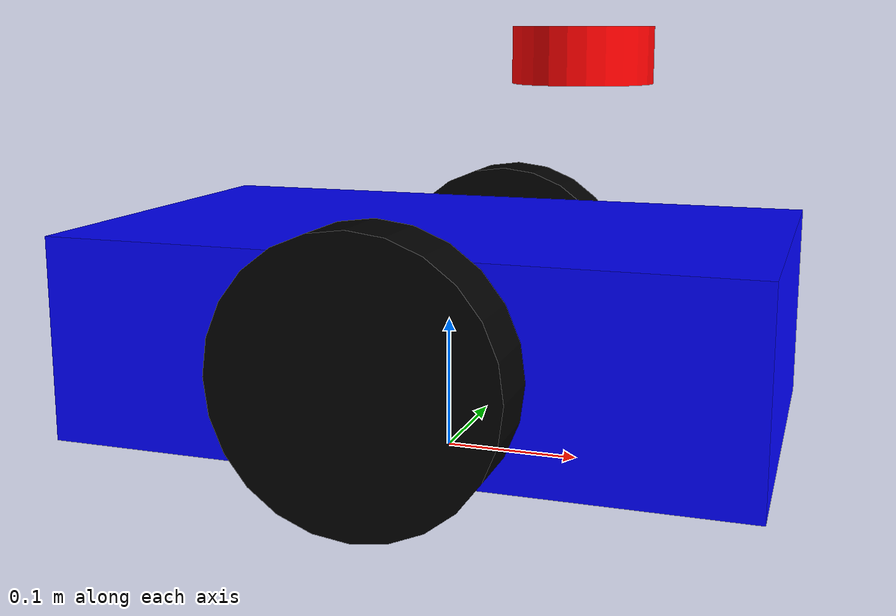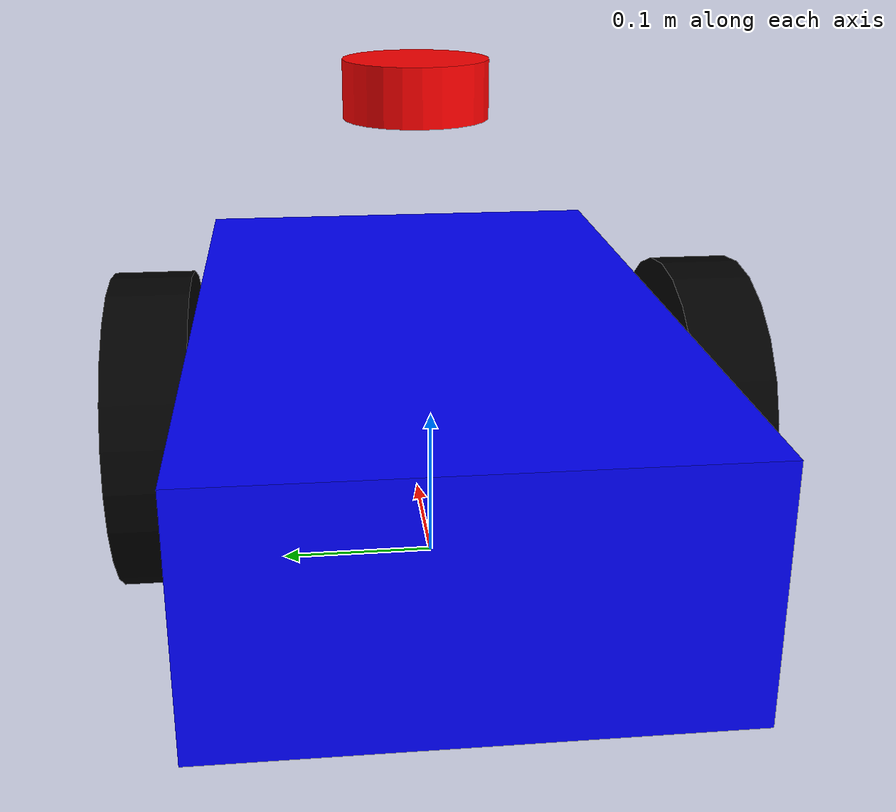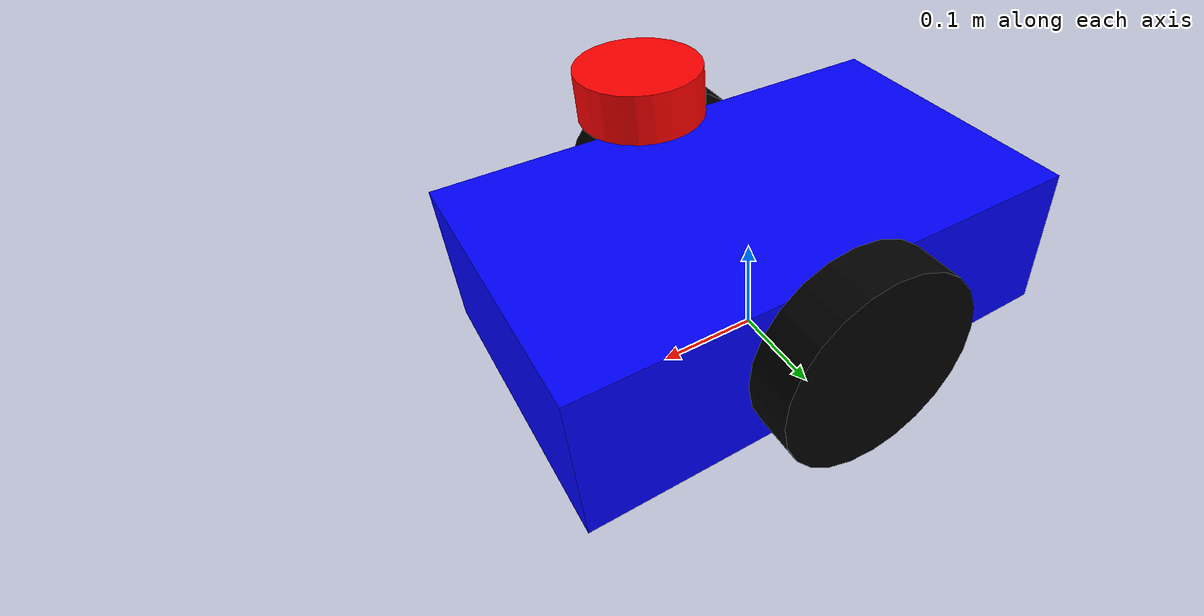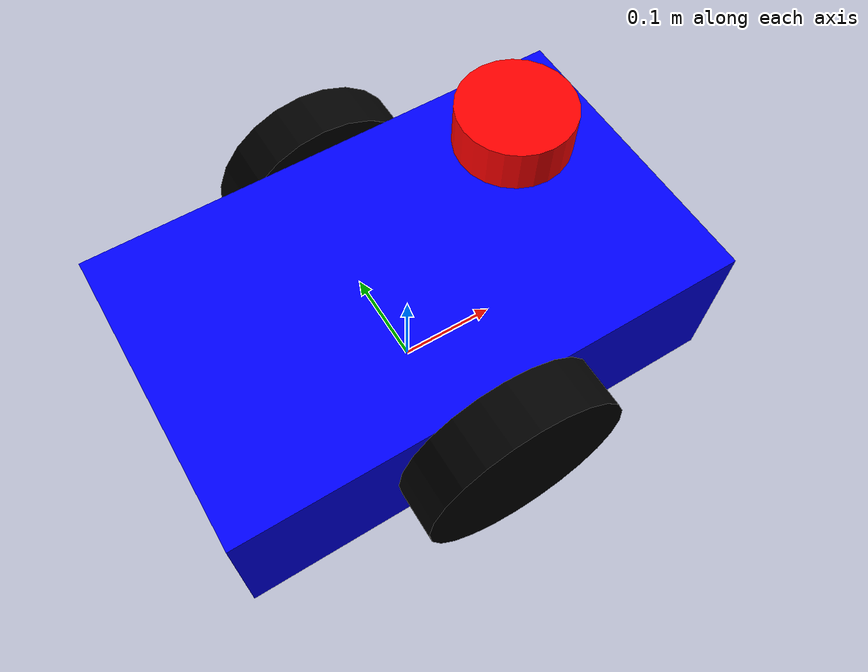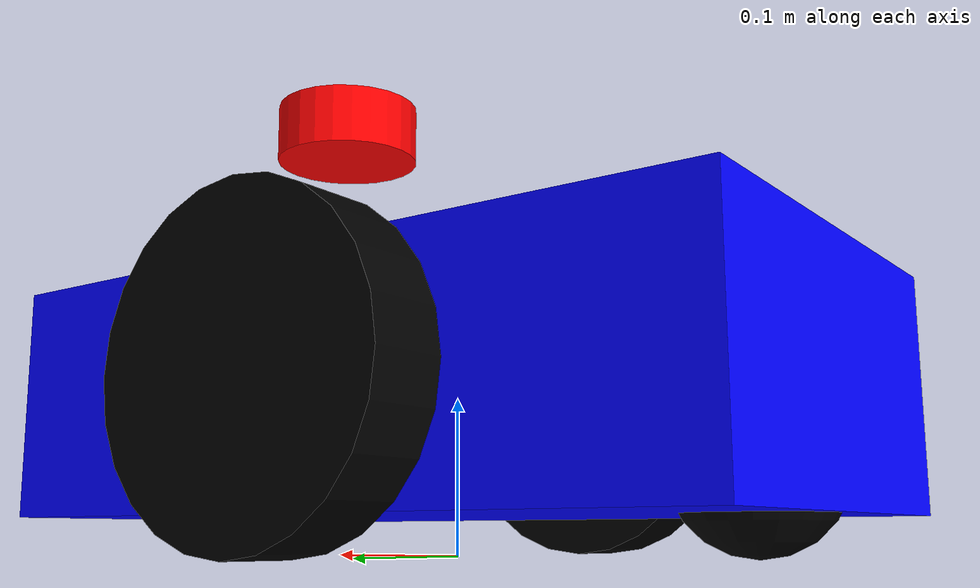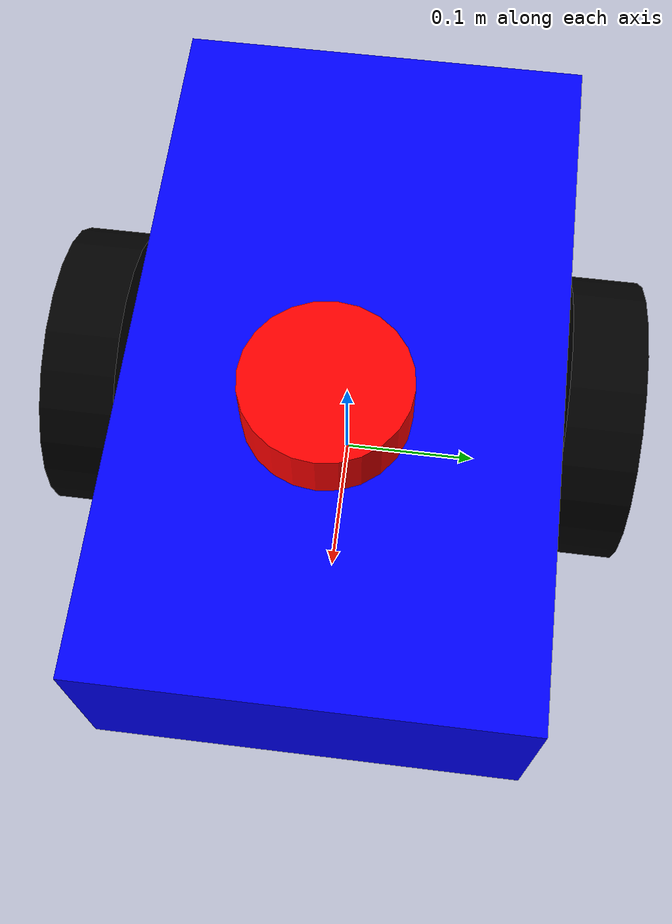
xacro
<?xml version="1.0"?>
<robot xmlns:xacro="http://www.ros.org/wiki/xacro" name="differential_drive_robot">

  <!-- ================= BASE LINK ================= -->
  <link name="base_link"/>

  <!-- ================= CHASSIS ================= -->
  <joint name="chassis_joint" type="fixed">
    <parent link="base_link"/>
    <child link="chassis"/>
    <origin xyz="0 0 0.1" rpy="0 0 0"/>
  </joint>

  <link name="chassis">
    <visual>
      <origin xyz="0 0 0" rpy="0 0 0"/>
      <geometry>
        <box size="0.5 0.3 0.15"/>
      </geometry>
      <material name="blue">
        <color rgba="0 0 1 1"/>
      </material>
    </visual>
    <collision>
      <origin xyz="0 0 0" rpy="0 0 0"/>
      <geometry>
        <box size="0.5 0.3 0.15"/>
      </geometry>
    </collision>
    <inertial>
      <mass value="5.0"/>
      <origin xyz="0 0 0" rpy="0 0 0"/>
      <inertia ixx="0.0468" ixy="0" ixz="0" iyy="0.1115" iyz="0" izz="0.1416"/>
    </inertial>
  </link>

  <!-- ================= LEFT WHEEL ================= -->
  <joint name="left_wheel_joint" type="continuous">
    <parent link="chassis"/>
    <child link="left_wheel"/>
    <origin xyz="0 0.175 0" rpy="-1.5708 0 0"/>
    <axis xyz="0 0 1"/>
  </joint>

  <link name="left_wheel">
    <visual>
      <geometry>
        <cylinder radius="0.1" length="0.05"/>
      </geometry>
      <material name="black">
        <color rgba="0 0 0 1"/>
      </material>
    </visual>
    <collision>
      <geometry>
        <cylinder radius="0.1" length="0.05"/>
      </geometry>
    </collision>
    <inertial>
      <mass value="0.5"/>
      <origin xyz="0 0 0" rpy="0 0 0"/>
      <inertia ixx="0.00135" ixy="0" ixz="0" iyy="0.00135" iyz="0" izz="0.0025"/>
    </inertial>
  </link>

  <!-- ================= RIGHT WHEEL ================= -->
  <joint name="right_wheel_joint" type="continuous">
    <parent link="chassis"/>
    <child link="right_wheel"/>
    <origin xyz="0 -0.175 0" rpy="-1.5708 0 0"/>
    <axis xyz="0 0 1"/>
  </joint>

  <link name="right_wheel">
    <visual>
      <geometry>
        <cylinder radius="0.1" length="0.05"/>
      </geometry>
      <material name="black">
        <color rgba="0 0 0 1"/>
      </material>
    </visual>
    <collision>
      <geometry>
        <cylinder radius="0.1" length="0.05"/>
      </geometry>
    </collision>
    <inertial>
      <mass value="0.5"/>
      <origin xyz="0 0 0" rpy="0 0 0"/>
      <inertia ixx="0.00135" ixy="0" ixz="0" iyy="0.00135" iyz="0" izz="0.0025"/>
    </inertial>
  </link>

  <!-- ================= CASTER WHEEL (BALANCES THE ROBOT) ================= -->
  <joint name="caster_wheel_joint" type="fixed">
    <parent link="chassis"/>
    <child link="caster_wheel"/>
    <!-- Aligned to floor level (z = -0.05) at the rear (-x) -->
    <origin xyz="-0.20 0 -0.05" rpy="0 0 0"/>
  </joint>

  <link name="caster_wheel">
    <visual>
      <geometry>
        <sphere radius="0.05"/>
      </geometry>
      <material name="black">
        <color rgba="0 0 0 1"/>
      </material>
    </visual>
    <collision>
      <geometry>
        <sphere radius="0.05"/>
      </geometry>
    </collision>
    <inertial>
      <mass value="0.1"/>
      <origin xyz="0 0 0" rpy="0 0 0"/>
      <inertia ixx="0.0001" ixy="0" ixz="0" iyy="0.0001" iyz="0" izz="0.0001"/>
    </inertial>
  </link>

  <gazebo reference="caster_wheel">
    <mu1>0.001</mu1>
    <mu2>0.001</mu2>
  </gazebo>

  <!-- ================= LIDAR JOINT & LINK ================= -->
  <joint name="lidar_joint" type="fixed">
    <!-- Elevated to z=0.20 to clear chassis height -->
    <origin xyz="0.10 0.00 0.20" rpy="0 0 0"/>
    <parent link="chassis"/>
    <child link="lidar_link"/>
  </joint>

  <link name="lidar_link">
    <visual>
      <origin xyz="0 0 0" rpy="0 0 0"/>
      <geometry>
        <cylinder radius="0.05" length="0.04"/>
      </geometry>
      <material name="red">
        <color rgba="1 0 0 1"/>
      </material>
    </visual>
    <collision>
      <origin xyz="0 0 0" rpy="0 0 0"/>
      <geometry>
        <cylinder radius="0.05" length="0.04"/>
      </geometry>
    </collision>
    <inertial>
      <mass value="0.1"/>
      <origin xyz="0 0 0" rpy="0 0 0"/>
      <inertia ixx="0.000075" ixy="0" ixz="0" iyy="0.000075" iyz="0" izz="0.000125"/>
    </inertial>
  </link>

  <!-- Prevent Gazebo from lumping lidar_link into chassis -->
  <gazebo reference="lidar_joint">
    <preserveFixedJoint>true</preserveFixedJoint>
  </gazebo>

  <!-- ================= GAZEBO PLUGINS & SENSORS ================= -->

  <!-- Sensors System Plugin -->
  <gazebo>
    <plugin filename="gz-sim-sensors-system" name="gz::sim::systems::Sensors">
      <render_engine>ogre2</render_engine>
    </plugin>
  </gazebo>

  <!-- Gazebo Sim Differential Drive Plugin -->
  <gazebo>
    <plugin filename="gz-sim-diff-drive-system" name="gz::sim::systems::DiffDrive">
      <right_joint>right_wheel_joint</right_joint>
      <left_joint>left_wheel_joint</left_joint>
      <wheel_separation>0.35</wheel_separation>
      <wheel_diameter>0.2</wheel_diameter>
      <max_linear_acceleration>10</max_linear_acceleration>
      <topic>cmd_vel</topic>
      <tf_topic>/tf</tf_topic>
      <odom_topic>odom</odom_topic>
      <frame_id>odom</frame_id>
      <child_frame_id>base_link</child_frame_id>
      <odom_publisher_frequency>30</odom_publisher_frequency>
    </plugin>

    <!-- Joint State Publisher -->
    <plugin filename="gz-sim-joint-state-publisher-system" name="gz::sim::systems::JointStatePublisher">
      <topic>joint_states</topic>
      <joint_name>left_wheel_joint</joint_name>
      <joint_name>right_wheel_joint</joint_name>
    </plugin>
  </gazebo>

  <!-- Lidar Sensor Definition -->
  <gazebo reference="lidar_link">
    <sensor name="lidar" type="gpu_lidar">
      <pose relative_to="lidar_link">0 0 0 0 0 0</pose>
      <topic>scan</topic>
      <gz_frame_id>lidar_link</gz_frame_id>
      <update_rate>10</update_rate>
      <always_on>true</always_on>
      <visualize>true</visualize>

      <lidar>
        <scan>
          <horizontal>
            <samples>360</samples>
            <resolution>1</resolution>
            <min_angle>-3.14159</min_angle>
            <max_angle>3.14159</max_angle>
          </horizontal>
        </scan>
        <range>
          <min>0.15</min>
          <max>12.0</max>
          <resolution>0.01</resolution>
        </range>
        <noise>
          <type>gaussian</type>
          <mean>0.0</mean>
          <stddev>0.001</stddev>
        </noise>
      </lidar>
    </sensor>
  </gazebo>

</robot>
